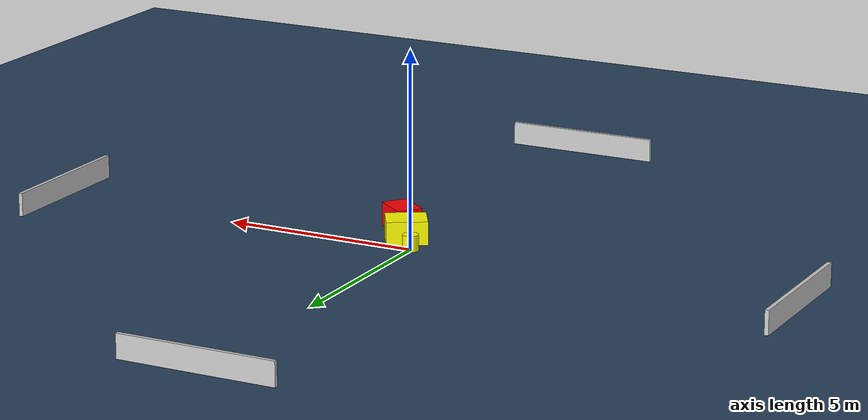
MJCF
<?xml version="1.0" ?>
<mujoco model="generated_environment">
  <option timestep="0.01" integrator="RK4" cone="elliptic"/>
  <default>
    <geom density="1"/>
  </default>
  <asset>
    <texture builtin="gradient" height="3072" name="skybox" rgb1="0.3 0.5 0.7" rgb2="0 0 0" type="skybox" width="512"/>
    <texture builtin="checker" height="300" name="groundplane" rgb1="0.2 0.3 0.4" rgb2="0.1 0.2 0.3" type="2d" width="300"/>
    <material name="groundplane" reflectance="0.2" texrepeat="5 5" texture="groundplane"/>
  </asset>
  <worldbody>
    <light dir="0 0 -1" directional="true" pos="0 0 1.5"/>
    <geom condim="3" friction="0.5 0.005 0.001" material="groundplane" name="floor" pos="0 0 0" size="0 0 0.05" type="plane"/>
    <body name="walls">
      <geom name="wall_1" condim="4" pos="-10.0 0.0 0.3" rgba="0.800000011920929 0.800000011920929 0.800000011920929 1.0" size="0.05 2.0 0.3" type="box"/>
      <geom name="wall_2" condim="4" pos="10.0 0.0 0.3" rgba="0.800000011920929 0.800000011920929 0.800000011920929 1.0" size="0.05 2.0 0.3" type="box"/>
      <geom name="wall_3" condim="4" pos="0.0 -10.0 0.3" rgba="0.800000011920929 0.800000011920929 0.800000011920929 1.0" size="2.0 0.05 0.3" type="box"/>
      <geom name="wall_4" condim="4" pos="0.0 10.0 0.3" rgba="0.800000011920929 0.800000011920929 0.800000011920929 1.0" size="2.0 0.05 0.3" type="box"/>
    </body>
    <body name="robot">
      <joint name="joint_x" type="slide" pos="0 0 0" axis="1 0 0"/>
      <joint name="joint_y" type="slide" pos="0 0 0" axis="0 1 0"/>
      <geom name="robot" type="cylinder" pos="0.0 0.0 0.2" size="0.2 0.2 0.0" mass="5.0" friction="1.0 0.005 0.0001" condim="4" rgba="1.0 1.0 0.0 1.0"/>
    </body>
    <body name="obstacle_1_movable">
      <geom name="obstacle_1_movable" condim="4" pos="0.4490392099191298 -0.635774429566689 0.3" euler="0 0 300.7938307306529" friction="0.0 0.005 0.001" rgba="1.0 1.0 0.0 1.0" size="0.42386993602877293 0.5133563883632972 0.3" type="box" mass="0.1"/>
      <joint type="free"/>
    </body>
    <body name="obstacle_2_static">
      <geom name="obstacle_2_static" condim="4" pos="1.0155870373128144 -1.5058609062096315 0.3" euler="0 0 52.49673848313307" friction="0.0 0.005 0.001" rgba="1.0 0.0 0.0 1.0" size="0.33140668222298764 0.4782033521373855 0.3" type="box"/>
    </body>
  </worldbody>
  <actuator>
    <motor name="actuator_x" joint="joint_x" gear="1" ctrlrange="-1 1"/>
    <motor name="actuator_y" joint="joint_y" gear="1" ctrlrange="-1 1"/>
  </actuator>
</mujoco>
